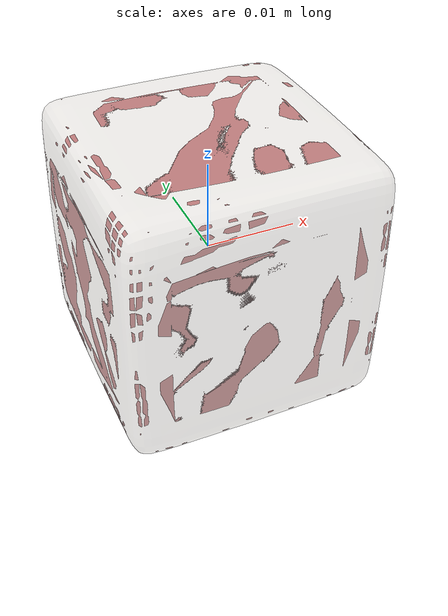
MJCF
<mujoco model="model">
  <compiler angle="radian"/>
  <asset>
    <mesh file="visual/IceCube004.obj" name="IceCube004_vis"/>
    <texture file="visual/T_BC001.png" name="IceCube004_material" type="2d"/>
    <material name="IceCube004_material" rgba="1 1 1 0.26363635063171387" texture="IceCube004_material" shininess="0.4472135901451111" specular="1"/>
    <mesh file="collision/collision_mesh_collision_0.obj" name="IceCube004_collision_mesh_0"/>
  </asset>
  <default>
    <default class="visual">
      <geom conaffinity="0" contype="0" group="1" type="mesh"/>
    </default>
    <default class="collision">
      <geom group="0" rgba="0.5 0 0 0.5"/>
    </default>
    <default class="spawn">
      <geom group="0" rgba="1 1 1 0.5" contype="0" conaffinity="0"/>
      <site group="0" rgba="1 1 1 0.5"/>
    </default>
    <default class="region">
      <geom group="1" conaffinity="0" contype="0" rgba="0 1 0 0" mass="0"/>
    </default>
  </default>
  <worldbody>
    <body>
      <body name="object">
        <geom mesh="IceCube004_vis" type="mesh" solimp="0.998 0.998 0.001" solref="0.001 1" density="100" friction="0.95 0.3 0.1" class="visual" material="IceCube004_material"/>
        <geom class="region" name="reg_bbox" type="box" pos="0.0 0.0 0.0" size="0.013492 0.013492 0.013927"/>
        <geom mesh="IceCube004_collision_mesh_0" type="mesh" class="collision"/>
      </body>
    </body>
  </worldbody>
  <actuator/>
</mujoco>
